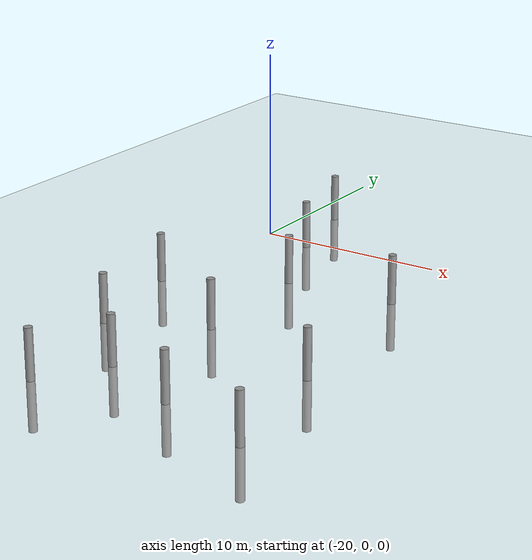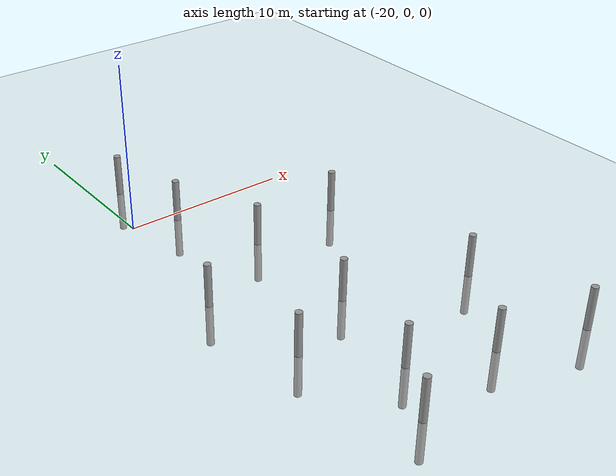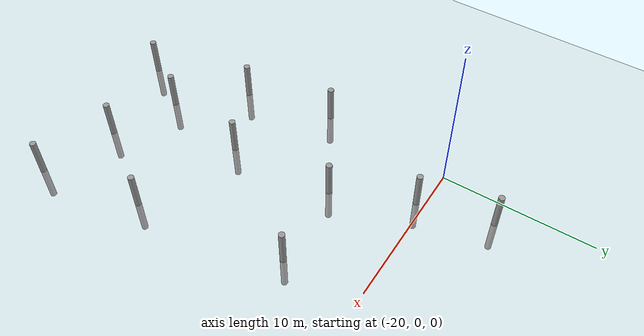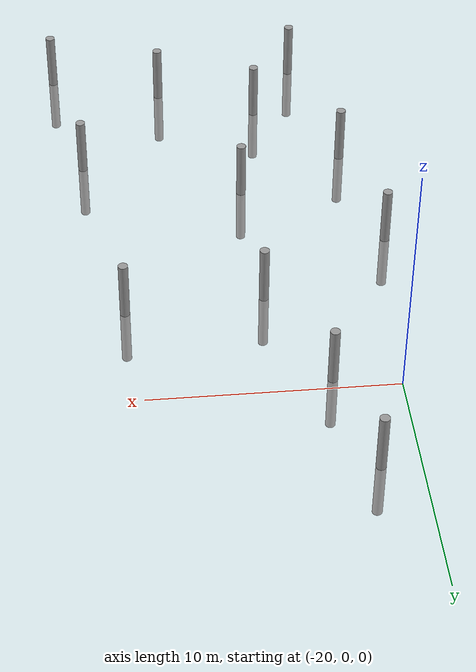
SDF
<sdf version="1.6">
 <world name="default">
  <model name="ground_plane">
   <static>1</static>
   <link name="link">
    <collision name="collision">
     <geometry><plane><normal>0 0 1</normal><size>100 100</size></plane></geometry>
     <surface><friction><ode><mu>100</mu><mu2>50</mu2></ode></friction></surface>
    </collision>
    <visual name="visual">
     <cast_shadows>0</cast_shadows>
     <geometry><plane><normal>0 0 1</normal><size>100 100</size></plane></geometry>
     <material>
      <script><uri>file://media/materials/scripts/gazebo.material</uri><name>Gazebo/Grey</name></script>
     </material>
    </visual>
   </link>
  </model>
  <model name="empty_pillars_5">
   <model name="empty_pillar_clone_53">
    <link name="link">
     <inertial>
      <mass>1</mass>
      <inertia><ixx>0.145833</ixx><ixy>0</ixy><ixz>0</ixz><iyy>0.145833</iyy><iyz>0</iyz><izz>0.125</izz></inertia>
     </inertial>
     <visual name="visual">
      <geometry><cylinder><radius>0.2</radius><length>5</length></cylinder></geometry>
      <material>
       <script><name>Gazebo/Grey</name><uri>file://media/materials/scripts/gazebo.material</uri></script>
       <shader type="vertex"><normal_map>__default__</normal_map></shader>
       <ambient>0.3 0.3 0.3 1</ambient>
       <diffuse>0.7 0.7 0.7 1</diffuse>
       <specular>0.01 0.01 0.01 1</specular>
       <emissive>0 0 0 1</emissive>
      </material>
     </visual>
     <collision name="collision">
      <geometry><cylinder><radius>0.05</radius><length>5</length></cylinder></geometry>
      <surface>
       <friction>
        <ode><mu>1</mu><mu2>1</mu2><fdir1>0 0 0</fdir1><slip1>0</slip1><slip2>0</slip2></ode>
        <torsional>
         <coefficient>1</coefficient>
         <patch_radius>0</patch_radius>
         <surface_radius>0</surface_radius>
         <use_patch_radius>1</use_patch_radius>
         <ode><slip>0</slip></ode>
        </torsional>
       </friction>
       <bounce><restitution_coefficient>0</restitution_coefficient><threshold>1e+06</threshold></bounce>
       <contact>
        <collide_without_contact>0</collide_without_contact>
        <collide_without_contact_bitmask>1</collide_without_contact_bitmask>
        <collide_bitmask>1</collide_bitmask>
        <ode>
         <soft_cfm>0</soft_cfm>
         <soft_erp>0.2</soft_erp>
         <kp>1e+13</kp>
         <kd>1</kd>
         <max_vel>0.01</max_vel>
         <min_depth>0</min_depth>
        </ode>
        <bullet>
         <split_impulse>1</split_impulse>
         <split_impulse_penetration_threshold>-0.01</split_impulse_penetration_threshold>
         <soft_cfm>0</soft_cfm>
         <soft_erp>0.2</soft_erp>
         <kp>1e+13</kp>
         <kd>1</kd>
        </bullet>
       </contact>
      </surface>
     </collision>
    </link>
    <static>0</static>
    <pose>7.32522 -23.3523 0 0 -0 0</pose>
   </model>
   <static>0</static>
   <pose>-25.786 27.5577 0 0 -0 0</pose>
  </model>
  <model name="empty_pillars_8">
   <model name="empty_pillar_clone_1">
    <link name="link">
     <inertial>
      <mass>1</mass>
      <inertia><ixx>0.145833</ixx><ixy>0</ixy><ixz>0</ixz><iyy>0.145833</iyy><iyz>0</iyz><izz>0.125</izz></inertia>
     </inertial>
     <visual name="visual">
      <geometry><cylinder><radius>0.2</radius><length>5</length></cylinder></geometry>
      <material>
       <script><name>Gazebo/Grey</name><uri>file://media/materials/scripts/gazebo.material</uri></script>
       <shader type="vertex"><normal_map>__default__</normal_map></shader>
       <ambient>0.3 0.3 0.3 1</ambient>
       <diffuse>0.7 0.7 0.7 1</diffuse>
       <specular>0.01 0.01 0.01 1</specular>
       <emissive>0 0 0 1</emissive>
      </material>
     </visual>
     <collision name="collision">
      <geometry><cylinder><radius>0.05</radius><length>5</length></cylinder></geometry>
      <surface>
       <friction>
        <ode><mu>1</mu><mu2>1</mu2><fdir1>0 0 0</fdir1><slip1>0</slip1><slip2>0</slip2></ode>
        <torsional>
         <coefficient>1</coefficient>
         <patch_radius>0</patch_radius>
         <surface_radius>0</surface_radius>
         <use_patch_radius>1</use_patch_radius>
         <ode><slip>0</slip></ode>
        </torsional>
       </friction>
       <bounce><restitution_coefficient>0</restitution_coefficient><threshold>1e+06</threshold></bounce>
       <contact>
        <collide_without_contact>0</collide_without_contact>
        <collide_without_contact_bitmask>1</collide_without_contact_bitmask>
        <collide_bitmask>1</collide_bitmask>
        <ode>
         <soft_cfm>0</soft_cfm>
         <soft_erp>0.2</soft_erp>
         <kp>1e+13</kp>
         <kd>1</kd>
         <max_vel>0.01</max_vel>
         <min_depth>0</min_depth>
        </ode>
        <bullet>
         <split_impulse>1</split_impulse>
         <split_impulse_penetration_threshold>-0.01</split_impulse_penetration_threshold>
         <soft_cfm>0</soft_cfm>
         <soft_erp>0.2</soft_erp>
         <kp>1e+13</kp>
         <kd>1</kd>
        </bullet>
       </contact>
      </surface>
     </collision>
    </link>
    <static>0</static>
    <pose>8.92248 2.14838 0 0 -0 0</pose>
   </model>
   <model name="empty_pillar_clone_2">
    <link name="link">
     <inertial>
      <mass>1</mass>
      <inertia><ixx>0.145833</ixx><ixy>0</ixy><ixz>0</ixz><iyy>0.145833</iyy><iyz>0</iyz><izz>0.125</izz></inertia>
     </inertial>
     <visual name="visual">
      <geometry><cylinder><radius>0.2</radius><length>5</length></cylinder></geometry>
      <material>
       <script><name>Gazebo/Grey</name><uri>file://media/materials/scripts/gazebo.material</uri></script>
       <shader type="vertex"><normal_map>__default__</normal_map></shader>
       <ambient>0.3 0.3 0.3 1</ambient>
       <diffuse>0.7 0.7 0.7 1</diffuse>
       <specular>0.01 0.01 0.01 1</specular>
       <emissive>0 0 0 1</emissive>
      </material>
     </visual>
     <collision name="collision">
      <geometry><cylinder><radius>0.05</radius><length>5</length></cylinder></geometry>
      <surface>
       <friction>
        <ode><mu>1</mu><mu2>1</mu2><fdir1>0 0 0</fdir1><slip1>0</slip1><slip2>0</slip2></ode>
        <torsional>
         <coefficient>1</coefficient>
         <patch_radius>0</patch_radius>
         <surface_radius>0</surface_radius>
         <use_patch_radius>1</use_patch_radius>
         <ode><slip>0</slip></ode>
        </torsional>
       </friction>
       <bounce><restitution_coefficient>0</restitution_coefficient><threshold>1e+06</threshold></bounce>
       <contact>
        <collide_without_contact>0</collide_without_contact>
        <collide_without_contact_bitmask>1</collide_without_contact_bitmask>
        <collide_bitmask>1</collide_bitmask>
        <ode>
         <soft_cfm>0</soft_cfm>
         <soft_erp>0.2</soft_erp>
         <kp>1e+13</kp>
         <kd>1</kd>
         <max_vel>0.01</max_vel>
         <min_depth>0</min_depth>
        </ode>
        <bullet>
         <split_impulse>1</split_impulse>
         <split_impulse_penetration_threshold>-0.01</split_impulse_penetration_threshold>
         <soft_cfm>0</soft_cfm>
         <soft_erp>0.2</soft_erp>
         <kp>1e+13</kp>
         <kd>1</kd>
        </bullet>
       </contact>
      </surface>
     </collision>
    </link>
    <static>0</static>
    <pose>6.92427 -1.06221 0 0 -0 0</pose>
   </model>
   <model name="empty_pillar_clone_26">
    <link name="link">
     <inertial>
      <mass>1</mass>
      <inertia><ixx>0.145833</ixx><ixy>0</ixy><ixz>0</ixz><iyy>0.145833</iyy><iyz>0</iyz><izz>0.125</izz></inertia>
     </inertial>
     <visual name="visual">
      <geometry><cylinder><radius>0.2</radius><length>5</length></cylinder></geometry>
      <material>
       <script><name>Gazebo/Grey</name><uri>file://media/materials/scripts/gazebo.material</uri></script>
       <shader type="vertex"><normal_map>__default__</normal_map></shader>
       <ambient>0.3 0.3 0.3 1</ambient>
       <diffuse>0.7 0.7 0.7 1</diffuse>
       <specular>0.01 0.01 0.01 1</specular>
       <emissive>0 0 0 1</emissive>
      </material>
     </visual>
     <collision name="collision">
      <geometry><cylinder><radius>0.05</radius><length>5</length></cylinder></geometry>
      <surface>
       <friction>
        <ode><mu>1</mu><mu2>1</mu2><fdir1>0 0 0</fdir1><slip1>0</slip1><slip2>0</slip2></ode>
        <torsional>
         <coefficient>1</coefficient>
         <patch_radius>0</patch_radius>
         <surface_radius>0</surface_radius>
         <use_patch_radius>1</use_patch_radius>
         <ode><slip>0</slip></ode>
        </torsional>
       </friction>
       <bounce><restitution_coefficient>0</restitution_coefficient><threshold>1e+06</threshold></bounce>
       <contact>
        <collide_without_contact>0</collide_without_contact>
        <collide_without_contact_bitmask>1</collide_without_contact_bitmask>
        <collide_bitmask>1</collide_bitmask>
        <ode>
         <soft_cfm>0</soft_cfm>
         <soft_erp>0.2</soft_erp>
         <kp>1e+13</kp>
         <kd>1</kd>
         <max_vel>0.01</max_vel>
         <min_depth>0</min_depth>
        </ode>
        <bullet>
         <split_impulse>1</split_impulse>
         <split_impulse_penetration_threshold>-0.01</split_impulse_penetration_threshold>
         <soft_cfm>0</soft_cfm>
         <soft_erp>0.2</soft_erp>
         <kp>1e+13</kp>
         <kd>1</kd>
        </bullet>
       </contact>
      </surface>
     </collision>
    </link>
    <static>0</static>
    <pose>7.70652 20.1444 0 0 -0 0</pose>
   </model>
   <model name="empty_pillar_clone_27">
    <link name="link">
     <inertial>
      <mass>1</mass>
      <inertia><ixx>0.145833</ixx><ixy>0</ixy><ixz>0</ixz><iyy>0.145833</iyy><iyz>0</iyz><izz>0.125</izz></inertia>
     </inertial>
     <visual name="visual">
      <geometry><cylinder><radius>0.2</radius><length>5</length></cylinder></geometry>
      <material>
       <script><name>Gazebo/Grey</name><uri>file://media/materials/scripts/gazebo.material</uri></script>
       <shader type="vertex"><normal_map>__default__</normal_map></shader>
       <ambient>0.3 0.3 0.3 1</ambient>
       <diffuse>0.7 0.7 0.7 1</diffuse>
       <specular>0.01 0.01 0.01 1</specular>
       <emissive>0 0 0 1</emissive>
      </material>
     </visual>
     <collision name="collision">
      <geometry><cylinder><radius>0.05</radius><length>5</length></cylinder></geometry>
      <surface>
       <friction>
        <ode><mu>1</mu><mu2>1</mu2><fdir1>0 0 0</fdir1><slip1>0</slip1><slip2>0</slip2></ode>
        <torsional>
         <coefficient>1</coefficient>
         <patch_radius>0</patch_radius>
         <surface_radius>0</surface_radius>
         <use_patch_radius>1</use_patch_radius>
         <ode><slip>0</slip></ode>
        </torsional>
       </friction>
       <bounce><restitution_coefficient>0</restitution_coefficient><threshold>1e+06</threshold></bounce>
       <contact>
        <collide_without_contact>0</collide_without_contact>
        <collide_without_contact_bitmask>1</collide_without_contact_bitmask>
        <collide_bitmask>1</collide_bitmask>
        <ode>
         <soft_cfm>0</soft_cfm>
         <soft_erp>0.2</soft_erp>
         <kp>1e+13</kp>
         <kd>1</kd>
         <max_vel>0.01</max_vel>
         <min_depth>0</min_depth>
        </ode>
        <bullet>
         <split_impulse>1</split_impulse>
         <split_impulse_penetration_threshold>-0.01</split_impulse_penetration_threshold>
         <soft_cfm>0</soft_cfm>
         <soft_erp>0.2</soft_erp>
         <kp>1e+13</kp>
         <kd>1</kd>
        </bullet>
       </contact>
      </surface>
     </collision>
    </link>
    <static>0</static>
    <pose>4.32163 11.823 0 0 -0 0</pose>
   </model>
   <model name="empty_pillar_clone_28">
    <link name="link">
     <inertial>
      <mass>1</mass>
      <inertia><ixx>0.145833</ixx><ixy>0</ixy><ixz>0</ixz><iyy>0.145833</iyy><iyz>0</iyz><izz>0.125</izz></inertia>
     </inertial>
     <visual name="visual">
      <geometry><cylinder><radius>0.2</radius><length>5</length></cylinder></geometry>
      <material>
       <script><name>Gazebo/Grey</name><uri>file://media/materials/scripts/gazebo.material</uri></script>
       <shader type="vertex"><normal_map>__default__</normal_map></shader>
       <ambient>0.3 0.3 0.3 1</ambient>
       <diffuse>0.7 0.7 0.7 1</diffuse>
       <specular>0.01 0.01 0.01 1</specular>
       <emissive>0 0 0 1</emissive>
      </material>
     </visual>
     <collision name="collision">
      <geometry><cylinder><radius>0.05</radius><length>5</length></cylinder></geometry>
      <surface>
       <friction>
        <ode><mu>1</mu><mu2>1</mu2><fdir1>0 0 0</fdir1><slip1>0</slip1><slip2>0</slip2></ode>
        <torsional>
         <coefficient>1</coefficient>
         <patch_radius>0</patch_radius>
         <surface_radius>0</surface_radius>
         <use_patch_radius>1</use_patch_radius>
         <ode><slip>0</slip></ode>
        </torsional>
       </friction>
       <bounce><restitution_coefficient>0</restitution_coefficient><threshold>1e+06</threshold></bounce>
       <contact>
        <collide_without_contact>0</collide_without_contact>
        <collide_without_contact_bitmask>1</collide_without_contact_bitmask>
        <collide_bitmask>1</collide_bitmask>
        <ode>
         <soft_cfm>0</soft_cfm>
         <soft_erp>0.2</soft_erp>
         <kp>1e+13</kp>
         <kd>1</kd>
         <max_vel>0.01</max_vel>
         <min_depth>0</min_depth>
        </ode>
        <bullet>
         <split_impulse>1</split_impulse>
         <split_impulse_penetration_threshold>-0.01</split_impulse_penetration_threshold>
         <soft_cfm>0</soft_cfm>
         <soft_erp>0.2</soft_erp>
         <kp>1e+13</kp>
         <kd>1</kd>
        </bullet>
       </contact>
      </surface>
     </collision>
    </link>
    <static>0</static>
    <pose>15.5447 15.5867 0 0 -0 0</pose>
   </model>
   <model name="empty_pillar_clone_29">
    <link name="link">
     <inertial>
      <mass>1</mass>
      <inertia><ixx>0.145833</ixx><ixy>0</ixy><ixz>0</ixz><iyy>0.145833</iyy><iyz>0</iyz><izz>0.125</izz></inertia>
     </inertial>
     <visual name="visual">
      <geometry><cylinder><radius>0.2</radius><length>5</length></cylinder></geometry>
      <material>
       <script><name>Gazebo/Grey</name><uri>file://media/materials/scripts/gazebo.material</uri></script>
       <shader type="vertex"><normal_map>__default__</normal_map></shader>
       <ambient>0.3 0.3 0.3 1</ambient>
       <diffuse>0.7 0.7 0.7 1</diffuse>
       <specular>0.01 0.01 0.01 1</specular>
       <emissive>0 0 0 1</emissive>
      </material>
     </visual>
     <collision name="collision">
      <geometry><cylinder><radius>0.05</radius><length>5</length></cylinder></geometry>
      <surface>
       <friction>
        <ode><mu>1</mu><mu2>1</mu2><fdir1>0 0 0</fdir1><slip1>0</slip1><slip2>0</slip2></ode>
        <torsional>
         <coefficient>1</coefficient>
         <patch_radius>0</patch_radius>
         <surface_radius>0</surface_radius>
         <use_patch_radius>1</use_patch_radius>
         <ode><slip>0</slip></ode>
        </torsional>
       </friction>
       <bounce><restitution_coefficient>0</restitution_coefficient><threshold>1e+06</threshold></bounce>
       <contact>
        <collide_without_contact>0</collide_without_contact>
        <collide_without_contact_bitmask>1</collide_without_contact_bitmask>
        <collide_bitmask>1</collide_bitmask>
        <ode>
         <soft_cfm>0</soft_cfm>
         <soft_erp>0.2</soft_erp>
         <kp>1e+13</kp>
         <kd>1</kd>
         <max_vel>0.01</max_vel>
         <min_depth>0</min_depth>
        </ode>
        <bullet>
         <split_impulse>1</split_impulse>
         <split_impulse_penetration_threshold>-0.01</split_impulse_penetration_threshold>
         <soft_cfm>0</soft_cfm>
         <soft_erp>0.2</soft_erp>
         <kp>1e+13</kp>
         <kd>1</kd>
        </bullet>
       </contact>
      </surface>
     </collision>
    </link>
    <static>0</static>
    <pose>10.08 8.0876 0 0 -0 0</pose>
   </model>
   <model name="empty_pillar_clone_49">
    <link name="link">
     <inertial>
      <mass>1</mass>
      <inertia><ixx>0.145833</ixx><ixy>0</ixy><ixz>0</ixz><iyy>0.145833</iyy><iyz>0</iyz><izz>0.125</izz></inertia>
     </inertial>
     <visual name="visual">
      <geometry><cylinder><radius>0.2</radius><length>5</length></cylinder></geometry>
      <material>
       <script><name>Gazebo/Grey</name><uri>file://media/materials/scripts/gazebo.material</uri></script>
       <shader type="vertex"><normal_map>__default__</normal_map></shader>
       <ambient>0.3 0.3 0.3 1</ambient>
       <diffuse>0.7 0.7 0.7 1</diffuse>
       <specular>0.01 0.01 0.01 1</specular>
       <emissive>0 0 0 1</emissive>
      </material>
     </visual>
     <collision name="collision">
      <geometry><cylinder><radius>0.05</radius><length>5</length></cylinder></geometry>
      <surface>
       <friction>
        <ode><mu>1</mu><mu2>1</mu2><fdir1>0 0 0</fdir1><slip1>0</slip1><slip2>0</slip2></ode>
        <torsional>
         <coefficient>1</coefficient>
         <patch_radius>0</patch_radius>
         <surface_radius>0</surface_radius>
         <use_patch_radius>1</use_patch_radius>
         <ode><slip>0</slip></ode>
        </torsional>
       </friction>
       <bounce><restitution_coefficient>0</restitution_coefficient><threshold>1e+06</threshold></bounce>
       <contact>
        <collide_without_contact>0</collide_without_contact>
        <collide_without_contact_bitmask>1</collide_without_contact_bitmask>
        <collide_bitmask>1</collide_bitmask>
        <ode>
         <soft_cfm>0</soft_cfm>
         <soft_erp>0.2</soft_erp>
         <kp>1e+13</kp>
         <kd>1</kd>
         <max_vel>0.01</max_vel>
         <min_depth>0</min_depth>
        </ode>
        <bullet>
         <split_impulse>1</split_impulse>
         <split_impulse_penetration_threshold>-0.01</split_impulse_penetration_threshold>
         <soft_cfm>0</soft_cfm>
         <soft_erp>0.2</soft_erp>
         <kp>1e+13</kp>
         <kd>1</kd>
        </bullet>
       </contact>
      </surface>
     </collision>
    </link>
    <static>0</static>
    <pose>9.84768 15.1425 0 0 -0 0</pose>
   </model>
   <model name="empty_pillar_clone_55">
    <link name="link">
     <inertial>
      <mass>1</mass>
      <inertia><ixx>0.145833</ixx><ixy>0</ixy><ixz>0</ixz><iyy>0.145833</iyy><iyz>0</iyz><izz>0.125</izz></inertia>
     </inertial>
     <visual name="visual">
      <geometry><cylinder><radius>0.2</radius><length>5</length></cylinder></geometry>
      <material>
       <script><name>Gazebo/Grey</name><uri>file://media/materials/scripts/gazebo.material</uri></script>
       <shader type="vertex"><normal_map>__default__</normal_map></shader>
       <ambient>0.3 0.3 0.3 1</ambient>
       <diffuse>0.7 0.7 0.7 1</diffuse>
       <specular>0.01 0.01 0.01 1</specular>
       <emissive>0 0 0 1</emissive>
      </material>
     </visual>
     <collision name="collision">
      <geometry><cylinder><radius>0.05</radius><length>5</length></cylinder></geometry>
      <surface>
       <friction>
        <ode><mu>1</mu><mu2>1</mu2><fdir1>0 0 0</fdir1><slip1>0</slip1><slip2>0</slip2></ode>
        <torsional>
         <coefficient>1</coefficient>
         <patch_radius>0</patch_radius>
         <surface_radius>0</surface_radius>
         <use_patch_radius>1</use_patch_radius>
         <ode><slip>0</slip></ode>
        </torsional>
       </friction>
       <bounce><restitution_coefficient>0</restitution_coefficient><threshold>1e+06</threshold></bounce>
       <contact>
        <collide_without_contact>0</collide_without_contact>
        <collide_without_contact_bitmask>1</collide_without_contact_bitmask>
        <collide_bitmask>1</collide_bitmask>
        <ode>
         <soft_cfm>0</soft_cfm>
         <soft_erp>0.2</soft_erp>
         <kp>1e+13</kp>
         <kd>1</kd>
         <max_vel>0.01</max_vel>
         <min_depth>0</min_depth>
        </ode>
        <bullet>
         <split_impulse>1</split_impulse>
         <split_impulse_penetration_threshold>-0.01</split_impulse_penetration_threshold>
         <soft_cfm>0</soft_cfm>
         <soft_erp>0.2</soft_erp>
         <kp>1e+13</kp>
         <kd>1</kd>
        </bullet>
       </contact>
      </surface>
     </collision>
    </link>
    <static>0</static>
    <pose>13.2247 0.382706 0 0 -0 0</pose>
   </model>
   <model name="empty_pillar_clone_57">
    <link name="link">
     <inertial>
      <mass>1</mass>
      <inertia><ixx>0.145833</ixx><ixy>0</ixy><ixz>0</ixz><iyy>0.145833</iyy><iyz>0</iyz><izz>0.125</izz></inertia>
     </inertial>
     <visual name="visual">
      <geometry><cylinder><radius>0.2</radius><length>5</length></cylinder></geometry>
      <material>
       <script><name>Gazebo/Grey</name><uri>file://media/materials/scripts/gazebo.material</uri></script>
       <shader type="vertex"><normal_map>__default__</normal_map></shader>
       <ambient>0.3 0.3 0.3 1</ambient>
       <diffuse>0.7 0.7 0.7 1</diffuse>
       <specular>0.01 0.01 0.01 1</specular>
       <emissive>0 0 0 1</emissive>
      </material>
     </visual>
     <collision name="collision">
      <geometry><cylinder><radius>0.05</radius><length>5</length></cylinder></geometry>
      <surface>
       <friction>
        <ode><mu>1</mu><mu2>1</mu2><fdir1>0 0 0</fdir1><slip1>0</slip1><slip2>0</slip2></ode>
        <torsional>
         <coefficient>1</coefficient>
         <patch_radius>0</patch_radius>
         <surface_radius>0</surface_radius>
         <use_patch_radius>1</use_patch_radius>
         <ode><slip>0</slip></ode>
        </torsional>
       </friction>
       <bounce><restitution_coefficient>0</restitution_coefficient><threshold>1e+06</threshold></bounce>
       <contact>
        <collide_without_contact>0</collide_without_contact>
        <collide_without_contact_bitmask>1</collide_without_contact_bitmask>
        <collide_bitmask>1</collide_bitmask>
        <ode>
         <soft_cfm>0</soft_cfm>
         <soft_erp>0.2</soft_erp>
         <kp>1e+13</kp>
         <kd>1</kd>
         <max_vel>0.01</max_vel>
         <min_depth>0</min_depth>
        </ode>
        <bullet>
         <split_impulse>1</split_impulse>
         <split_impulse_penetration_threshold>-0.01</split_impulse_penetration_threshold>
         <soft_cfm>0</soft_cfm>
         <soft_erp>0.2</soft_erp>
         <kp>1e+13</kp>
         <kd>1</kd>
        </bullet>
       </contact>
      </surface>
     </collision>
    </link>
    <static>0</static>
    <pose>5.4355 5.86468 0 0 -0 0</pose>
   </model>
   <model name="empty_pillar_clone_7">
    <link name="link">
     <inertial>
      <mass>1</mass>
      <inertia><ixx>0.145833</ixx><ixy>0</ixy><ixz>0</ixz><iyy>0.145833</iyy><iyz>0</iyz><izz>0.125</izz></inertia>
     </inertial>
     <visual name="visual">
      <geometry><cylinder><radius>0.2</radius><length>5</length></cylinder></geometry>
      <material>
       <script><name>Gazebo/Grey</name><uri>file://media/materials/scripts/gazebo.material</uri></script>
       <shader type="vertex"><normal_map>__default__</normal_map></shader>
       <ambient>0.3 0.3 0.3 1</ambient>
       <diffuse>0.7 0.7 0.7 1</diffuse>
       <specular>0.01 0.01 0.01 1</specular>
       <emissive>0 0 0 1</emissive>
      </material>
     </visual>
     <collision name="collision">
      <geometry><cylinder><radius>0.05</radius><length>5</length></cylinder></geometry>
      <surface>
       <friction>
        <ode><mu>1</mu><mu2>1</mu2><fdir1>0 0 0</fdir1><slip1>0</slip1><slip2>0</slip2></ode>
        <torsional>
         <coefficient>1</coefficient>
         <patch_radius>0</patch_radius>
         <surface_radius>0</surface_radius>
         <use_patch_radius>1</use_patch_radius>
         <ode><slip>0</slip></ode>
        </torsional>
       </friction>
       <bounce><restitution_coefficient>0</restitution_coefficient><threshold>1e+06</threshold></bounce>
       <contact>
        <collide_without_contact>0</collide_without_contact>
        <collide_without_contact_bitmask>1</collide_without_contact_bitmask>
        <collide_bitmask>1</collide_bitmask>
        <ode>
         <soft_cfm>0</soft_cfm>
         <soft_erp>0.2</soft_erp>
         <kp>1e+13</kp>
         <kd>1</kd>
         <max_vel>0.01</max_vel>
         <min_depth>0</min_depth>
        </ode>
        <bullet>
         <split_impulse>1</split_impulse>
         <split_impulse_penetration_threshold>-0.01</split_impulse_penetration_threshold>
         <soft_cfm>0</soft_cfm>
         <soft_erp>0.2</soft_erp>
         <kp>1e+13</kp>
         <kd>1</kd>
        </bullet>
       </contact>
      </surface>
     </collision>
    </link>
    <static>0</static>
    <pose>16.9242 5.74519 0 0 -0 0</pose>
   </model>
   <model name="empty_pillar_clone_9">
    <link name="link">
     <inertial>
      <mass>1</mass>
      <inertia><ixx>0.145833</ixx><ixy>0</ixy><ixz>0</ixz><iyy>0.145833</iyy><iyz>0</iyz><izz>0.125</izz></inertia>
     </inertial>
     <visual name="visual">
      <geometry><cylinder><radius>0.2</radius><length>5</length></cylinder></geometry>
      <material>
       <script><name>Gazebo/Grey</name><uri>file://media/materials/scripts/gazebo.material</uri></script>
       <shader type="vertex"><normal_map>__default__</normal_map></shader>
       <ambient>0.3 0.3 0.3 1</ambient>
       <diffuse>0.7 0.7 0.7 1</diffuse>
       <specular>0.01 0.01 0.01 1</specular>
       <emissive>0 0 0 1</emissive>
      </material>
     </visual>
     <collision name="collision">
      <geometry><cylinder><radius>0.05</radius><length>5</length></cylinder></geometry>
      <surface>
       <friction>
        <ode><mu>1</mu><mu2>1</mu2><fdir1>0 0 0</fdir1><slip1>0</slip1><slip2>0</slip2></ode>
        <torsional>
         <coefficient>1</coefficient>
         <patch_radius>0</patch_radius>
         <surface_radius>0</surface_radius>
         <use_patch_radius>1</use_patch_radius>
         <ode><slip>0</slip></ode>
        </torsional>
       </friction>
       <bounce><restitution_coefficient>0</restitution_coefficient><threshold>1e+06</threshold></bounce>
       <contact>
        <collide_without_contact>0</collide_without_contact>
        <collide_without_contact_bitmask>1</collide_without_contact_bitmask>
        <collide_bitmask>1</collide_bitmask>
        <ode>
         <soft_cfm>0</soft_cfm>
         <soft_erp>0.2</soft_erp>
         <kp>1e+13</kp>
         <kd>1</kd>
         <max_vel>0.01</max_vel>
         <min_depth>0</min_depth>
        </ode>
        <bullet>
         <split_impulse>1</split_impulse>
         <split_impulse_penetration_threshold>-0.01</split_impulse_penetration_threshold>
         <soft_cfm>0</soft_cfm>
         <soft_erp>0.2</soft_erp>
         <kp>1e+13</kp>
         <kd>1</kd>
        </bullet>
       </contact>
      </surface>
     </collision>
    </link>
    <static>0</static>
    <pose>18.1111 -1.13899 0 0 -0 0</pose>
   </model>
   <static>0</static>
   <pose>-25.0415 -20.6705 0 0 -0 0</pose>
  </model>
 </world>
</sdf>
